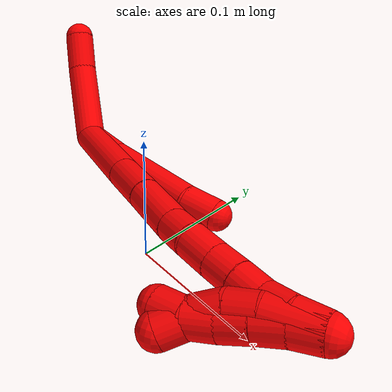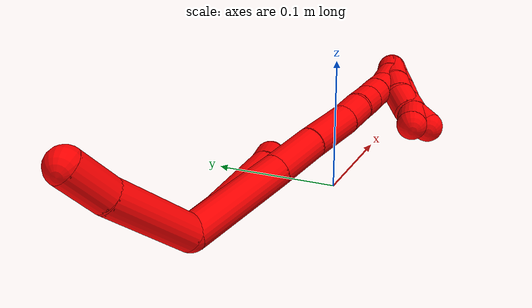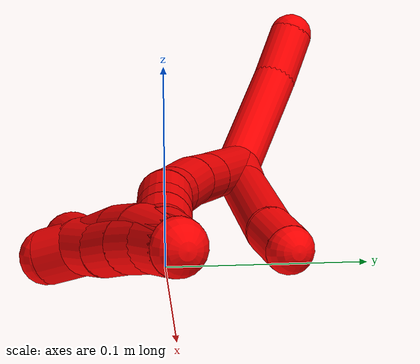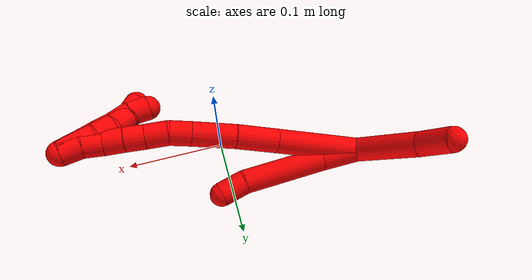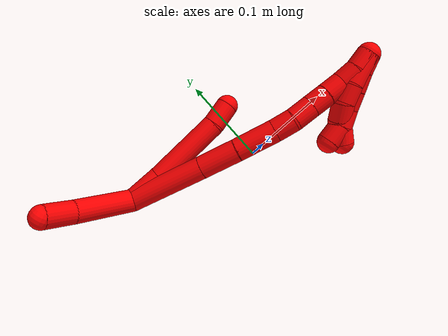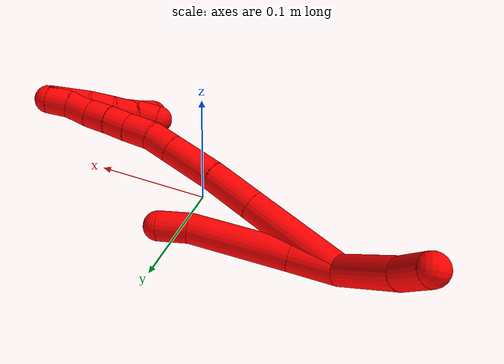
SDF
<sdf version="1.7">
 <world name="default">
  <model name="2">
   <static>0</static>
   <link name="2">
    <collision name="collision-cylinder-e_1_2_8">
     <pose>0.006295 -0.001494 0.018447 0.080801 0.327866 0.013373</pose>
     <geometry><cylinder><radius>0.0125</radius><length>0.039098</length></cylinder></geometry>
     <surface>
      <friction><ode><mu>1.16</mu><mu2>1.16</mu2><slip1>0</slip1><slip2>0</slip2></ode></friction>
      <contact><ode><kp>1e+06</kp><kd>1</kd><max_vel>0</max_vel><min_depth>0.001</min_depth></ode></contact>
     </surface>
    </collision>
    <visual name="visual-cylinder-e_1_2_8">
     <pose>0.006295 -0.001494 0.018447 0.080801 0.327866 0.013373</pose>
     <geometry><cylinder><radius>0.0125</radius><length>0.039098</length></cylinder></geometry>
     <material><ambient>1 0 0 1</ambient></material>
    </visual>
    <collision name="collision-cylinder-e_2_8_9">
     <pose>0.02373 -0.005998 0.077373 0.074239 0.267839 0.010006</pose>
     <geometry><cylinder><radius>0.0125</radius><length>0.084182</length></cylinder></geometry>
     <surface>
      <friction><ode><mu>1.16</mu><mu2>1.16</mu2><slip1>0</slip1><slip2>0</slip2></ode></friction>
      <contact><ode><kp>1e+06</kp><kd>1</kd><max_vel>0</max_vel><min_depth>0.001</min_depth></ode></contact>
     </surface>
    </collision>
    <visual name="visual-cylinder-e_2_8_9">
     <pose>0.02373 -0.005998 0.077373 0.074239 0.267839 0.010006</pose>
     <geometry><cylinder><radius>0.0125</radius><length>0.084182</length></cylinder></geometry>
     <material><ambient>1 0 0 1</ambient></material>
    </visual>
    <collision name="collision-cylinder-e_3_9_6">
     <pose>0.037331 -0.007411 0.130885 -0.122021 0.185355 -0.011355</pose>
     <geometry><cylinder><radius>0.0125</radius><length>0.02672</length></cylinder></geometry>
     <surface>
      <friction><ode><mu>1.16</mu><mu2>1.16</mu2><slip1>0</slip1><slip2>0</slip2></ode></friction>
      <contact><ode><kp>1e+06</kp><kd>1</kd><max_vel>0</max_vel><min_depth>0.001</min_depth></ode></contact>
     </surface>
    </collision>
    <visual name="visual-cylinder-e_3_9_6">
     <pose>0.037331 -0.007411 0.130885 -0.122021 0.185355 -0.011355</pose>
     <geometry><cylinder><radius>0.0125</radius><length>0.02672</length></cylinder></geometry>
     <material><ambient>1 0 0 1</ambient></material>
    </visual>
    <collision name="collision-cylinder-e_1_2_10">
     <pose>-0.029834 -0.00346 -0.015053 2.91566 -1.09309 -2.77286</pose>
     <geometry><cylinder><radius>0.0125</radius><length>0.067191</length></cylinder></geometry>
     <surface>
      <friction><ode><mu>1.16</mu><mu2>1.16</mu2><slip1>0</slip1><slip2>0</slip2></ode></friction>
      <contact><ode><kp>1e+06</kp><kd>1</kd><max_vel>0</max_vel><min_depth>0.001</min_depth></ode></contact>
     </surface>
    </collision>
    <visual name="visual-cylinder-e_1_2_10">
     <pose>-0.029834 -0.00346 -0.015053 2.91566 -1.09309 -2.77286</pose>
     <geometry><cylinder><radius>0.0125</radius><length>0.067191</length></cylinder></geometry>
     <material><ambient>1 0 0 1</ambient></material>
    </visual>
    <collision name="collision-cylinder-e_2_10_5">
     <pose>-0.074717 -0.010307 -0.035692 2.59657 -1.16119 -2.33616</pose>
     <geometry><cylinder><radius>0.0125</radius><length>0.032809</length></cylinder></geometry>
     <surface>
      <friction><ode><mu>1.16</mu><mu2>1.16</mu2><slip1>0</slip1><slip2>0</slip2></ode></friction>
      <contact><ode><kp>1e+06</kp><kd>1</kd><max_vel>0</max_vel><min_depth>0.001</min_depth></ode></contact>
     </surface>
    </collision>
    <visual name="visual-cylinder-e_2_10_5">
     <pose>-0.074717 -0.010307 -0.035692 2.59657 -1.16119 -2.33616</pose>
     <geometry><cylinder><radius>0.0125</radius><length>0.032809</length></cylinder></geometry>
     <material><ambient>1 0 0 1</ambient></material>
    </visual>
    <collision name="collision-cylinder-e_1_2_11">
     <pose>0.01479 -0.01832 0.036267 0.467745 0.349104 0.083974</pose>
     <geometry><cylinder><radius>0.0125</radius><length>0.08648</length></cylinder></geometry>
     <surface>
      <friction><ode><mu>1.16</mu><mu2>1.16</mu2><slip1>0</slip1><slip2>0</slip2></ode></friction>
      <contact><ode><kp>1e+06</kp><kd>1</kd><max_vel>0</max_vel><min_depth>0.001</min_depth></ode></contact>
     </surface>
    </collision>
    <visual name="visual-cylinder-e_1_2_11">
     <pose>0.01479 -0.01832 0.036267 0.467745 0.349104 0.083974</pose>
     <geometry><cylinder><radius>0.0125</radius><length>0.08648</length></cylinder></geometry>
     <material><ambient>1 0 0 1</ambient></material>
    </visual>
    <collision name="collision-cylinder-e_2_11_12">
     <pose>0.036483 -0.045738 0.090484 0.469159 0.330403 0.079643</pose>
     <geometry><cylinder><radius>0.0125</radius><length>0.042549</length></cylinder></geometry>
     <surface>
      <friction><ode><mu>1.16</mu><mu2>1.16</mu2><slip1>0</slip1><slip2>0</slip2></ode></friction>
      <contact><ode><kp>1e+06</kp><kd>1</kd><max_vel>0</max_vel><min_depth>0.001</min_depth></ode></contact>
     </surface>
    </collision>
    <visual name="visual-cylinder-e_2_11_12">
     <pose>0.036483 -0.045738 0.090484 0.469159 0.330403 0.079643</pose>
     <geometry><cylinder><radius>0.0125</radius><length>0.042549</length></cylinder></geometry>
     <material><ambient>1 0 0 1</ambient></material>
    </visual>
    <collision name="collision-cylinder-e_3_12_13">
     <pose>0.051429 -0.063145 0.127559 0.409806 0.368205 0.077358</pose>
     <geometry><cylinder><radius>0.0125</radius><length>0.044699</length></cylinder></geometry>
     <surface>
      <friction><ode><mu>1.16</mu><mu2>1.16</mu2><slip1>0</slip1><slip2>0</slip2></ode></friction>
      <contact><ode><kp>1e+06</kp><kd>1</kd><max_vel>0</max_vel><min_depth>0.001</min_depth></ode></contact>
     </surface>
    </collision>
    <visual name="visual-cylinder-e_3_12_13">
     <pose>0.051429 -0.063145 0.127559 0.409806 0.368205 0.077358</pose>
     <geometry><cylinder><radius>0.0125</radius><length>0.044699</length></cylinder></geometry>
     <material><ambient>1 0 0 1</ambient></material>
    </visual>
    <collision name="collision-cylinder-e_4_13_14">
     <pose>0.062656 -0.075699 0.156523 0.407367 0.28863 0.060015</pose>
     <geometry><cylinder><radius>0.0125</radius><length>0.022358</length></cylinder></geometry>
     <surface>
      <friction><ode><mu>1.16</mu><mu2>1.16</mu2><slip1>0</slip1><slip2>0</slip2></ode></friction>
      <contact><ode><kp>1e+06</kp><kd>1</kd><max_vel>0</max_vel><min_depth>0.001</min_depth></ode></contact>
     </surface>
    </collision>
    <visual name="visual-cylinder-e_4_13_14">
     <pose>0.062656 -0.075699 0.156523 0.407367 0.28863 0.060015</pose>
     <geometry><cylinder><radius>0.0125</radius><length>0.022358</length></cylinder></geometry>
     <material><ambient>1 0 0 1</ambient></material>
    </visual>
    <collision name="collision-cylinder-e_5_14_15">
     <pose>0.06966 -0.081785 0.177027 0.170862 0.339486 0.029354</pose>
     <geometry><cylinder><radius>0.0125</radius><length>0.022955</length></cylinder></geometry>
     <surface>
      <friction><ode><mu>1.16</mu><mu2>1.16</mu2><slip1>0</slip1><slip2>0</slip2></ode></friction>
      <contact><ode><kp>1e+06</kp><kd>1</kd><max_vel>0</max_vel><min_depth>0.001</min_depth></ode></contact>
     </surface>
    </collision>
    <visual name="visual-cylinder-e_5_14_15">
     <pose>0.06966 -0.081785 0.177027 0.170862 0.339486 0.029354</pose>
     <geometry><cylinder><radius>0.0125</radius><length>0.022955</length></cylinder></geometry>
     <material><ambient>1 0 0 1</ambient></material>
    </visual>
    <collision name="collision-cylinder-e_6_15_16">
     <pose>0.076522 -0.085613 0.197086 0.208599 0.306574 0.032343</pose>
     <geometry><cylinder><radius>0.0125</radius><length>0.020144</length></cylinder></geometry>
     <surface>
      <friction><ode><mu>1.16</mu><mu2>1.16</mu2><slip1>0</slip1><slip2>0</slip2></ode></friction>
      <contact><ode><kp>1e+06</kp><kd>1</kd><max_vel>0</max_vel><min_depth>0.001</min_depth></ode></contact>
     </surface>
    </collision>
    <visual name="visual-cylinder-e_6_15_16">
     <pose>0.076522 -0.085613 0.197086 0.208599 0.306574 0.032343</pose>
     <geometry><cylinder><radius>0.0125</radius><length>0.020144</length></cylinder></geometry>
     <material><ambient>1 0 0 1</ambient></material>
    </visual>
    <collision name="collision-cylinder-e_7_16_17">
     <pose>0.082925 -0.089238 0.215893 0.17212 0.338512 0.029485</pose>
     <geometry><cylinder><radius>0.0125</radius><length>0.020258</length></cylinder></geometry>
     <surface>
      <friction><ode><mu>1.16</mu><mu2>1.16</mu2><slip1>0</slip1><slip2>0</slip2></ode></friction>
      <contact><ode><kp>1e+06</kp><kd>1</kd><max_vel>0</max_vel><min_depth>0.001</min_depth></ode></contact>
     </surface>
    </collision>
    <visual name="visual-cylinder-e_7_16_17">
     <pose>0.082925 -0.089238 0.215893 0.17212 0.338512 0.029485</pose>
     <geometry><cylinder><radius>0.0125</radius><length>0.020258</length></cylinder></geometry>
     <material><ambient>1 0 0 1</ambient></material>
    </visual>
    <collision name="collision-cylinder-e_8_17_18">
     <pose>0.087871 -0.093547 0.234922 0.271026 0.157246 0.021484</pose>
     <geometry><cylinder><radius>0.0125</radius><length>0.020211</length></cylinder></geometry>
     <surface>
      <friction><ode><mu>1.16</mu><mu2>1.16</mu2><slip1>0</slip1><slip2>0</slip2></ode></friction>
      <contact><ode><kp>1e+06</kp><kd>1</kd><max_vel>0</max_vel><min_depth>0.001</min_depth></ode></contact>
     </surface>
    </collision>
    <visual name="visual-cylinder-e_8_17_18">
     <pose>0.087871 -0.093547 0.234922 0.271026 0.157246 0.021484</pose>
     <geometry><cylinder><radius>0.0125</radius><length>0.020211</length></cylinder></geometry>
     <material><ambient>1 0 0 1</ambient></material>
    </visual>
    <collision name="collision-cylinder-e_9_18_1">
     <pose>0.090465 -0.096463 0.254659 0.024195 0.099556 0.001205</pose>
     <geometry><cylinder><radius>0.0125</radius><length>0.020347</length></cylinder></geometry>
     <surface>
      <friction><ode><mu>1.16</mu><mu2>1.16</mu2><slip1>0</slip1><slip2>0</slip2></ode></friction>
      <contact><ode><kp>1e+06</kp><kd>1</kd><max_vel>0</max_vel><min_depth>0.001</min_depth></ode></contact>
     </surface>
    </collision>
    <visual name="visual-cylinder-e_9_18_1">
     <pose>0.090465 -0.096463 0.254659 0.024195 0.099556 0.001205</pose>
     <geometry><cylinder><radius>0.0125</radius><length>0.020347</length></cylinder></geometry>
     <material><ambient>1 0 0 1</ambient></material>
    </visual>
    <collision name="collision-cylinder-e_1_1_19">
     <pose>0.091986 -0.09783 0.246874 3.07902 0.028454 0.853409</pose>
     <geometry><cylinder><radius>0.0125</radius><length>0.035896</length></cylinder></geometry>
     <surface>
      <friction><ode><mu>1.16</mu><mu2>1.16</mu2><slip1>0</slip1><slip2>0</slip2></ode></friction>
      <contact><ode><kp>1e+06</kp><kd>1</kd><max_vel>0</max_vel><min_depth>0.001</min_depth></ode></contact>
     </surface>
    </collision>
    <visual name="visual-cylinder-e_1_1_19">
     <pose>0.091986 -0.09783 0.246874 3.07902 0.028454 0.853409</pose>
     <geometry><cylinder><radius>0.0125</radius><length>0.035896</length></cylinder></geometry>
     <material><ambient>1 0 0 1</ambient></material>
    </visual>
    <collision name="collision-cylinder-e_2_19_20">
     <pose>0.094612 -0.099056 0.219189 3.13096 0.213 3.04219</pose>
     <geometry><cylinder><radius>0.0125</radius><length>0.020011</length></cylinder></geometry>
     <surface>
      <friction><ode><mu>1.16</mu><mu2>1.16</mu2><slip1>0</slip1><slip2>0</slip2></ode></friction>
      <contact><ode><kp>1e+06</kp><kd>1</kd><max_vel>0</max_vel><min_depth>0.001</min_depth></ode></contact>
     </surface>
    </collision>
    <visual name="visual-cylinder-e_2_19_20">
     <pose>0.094612 -0.099056 0.219189 3.13096 0.213 3.04219</pose>
     <geometry><cylinder><radius>0.0125</radius><length>0.020011</length></cylinder></geometry>
     <material><ambient>1 0 0 1</ambient></material>
    </visual>
    <collision name="collision-cylinder-e_3_20_21">
     <pose>0.101543 -0.099447 0.200619 3.1089 0.500944 3.01397</pose>
     <geometry><cylinder><radius>0.0125</radius><length>0.020054</length></cylinder></geometry>
     <surface>
      <friction><ode><mu>1.16</mu><mu2>1.16</mu2><slip1>0</slip1><slip2>0</slip2></ode></friction>
      <contact><ode><kp>1e+06</kp><kd>1</kd><max_vel>0</max_vel><min_depth>0.001</min_depth></ode></contact>
     </surface>
    </collision>
    <visual name="visual-cylinder-e_3_20_21">
     <pose>0.101543 -0.099447 0.200619 3.1089 0.500944 3.01397</pose>
     <geometry><cylinder><radius>0.0125</radius><length>0.020054</length></cylinder></geometry>
     <material><ambient>1 0 0 1</ambient></material>
    </visual>
    <collision name="collision-cylinder-e_4_21_4">
     <pose>0.113993 -0.10283 0.183078 2.80163 0.688302 2.24838</pose>
     <geometry><cylinder><radius>0.0125</radius><length>0.024038</length></cylinder></geometry>
     <surface>
      <friction><ode><mu>1.16</mu><mu2>1.16</mu2><slip1>0</slip1><slip2>0</slip2></ode></friction>
      <contact><ode><kp>1e+06</kp><kd>1</kd><max_vel>0</max_vel><min_depth>0.001</min_depth></ode></contact>
     </surface>
    </collision>
    <visual name="visual-cylinder-e_4_21_4">
     <pose>0.113993 -0.10283 0.183078 2.80163 0.688302 2.24838</pose>
     <geometry><cylinder><radius>0.0125</radius><length>0.024038</length></cylinder></geometry>
     <material><ambient>1 0 0 1</ambient></material>
    </visual>
    <collision name="collision-cylinder-e_1_1_22">
     <pose>0.092795 -0.097294 0.254884 3.08245 0.132331 2.30194</pose>
     <geometry><cylinder><radius>0.0125</radius><length>0.02</length></cylinder></geometry>
     <surface>
      <friction><ode><mu>1.16</mu><mu2>1.16</mu2><slip1>0</slip1><slip2>0</slip2></ode></friction>
      <contact><ode><kp>1e+06</kp><kd>1</kd><max_vel>0</max_vel><min_depth>0.001</min_depth></ode></contact>
     </surface>
    </collision>
    <visual name="visual-cylinder-e_1_1_22">
     <pose>0.092795 -0.097294 0.254884 3.08245 0.132331 2.30194</pose>
     <geometry><cylinder><radius>0.0125</radius><length>0.02</length></cylinder></geometry>
     <material><ambient>1 0 0 1</ambient></material>
    </visual>
    <collision name="collision-cylinder-e_2_22_23">
     <pose>0.096688 -0.09841 0.23534 3.08676 0.260272 2.72853</pose>
     <geometry><cylinder><radius>0.0125</radius><length>0.02</length></cylinder></geometry>
     <surface>
      <friction><ode><mu>1.16</mu><mu2>1.16</mu2><slip1>0</slip1><slip2>0</slip2></ode></friction>
      <contact><ode><kp>1e+06</kp><kd>1</kd><max_vel>0</max_vel><min_depth>0.001</min_depth></ode></contact>
     </surface>
    </collision>
    <visual name="visual-cylinder-e_2_22_23">
     <pose>0.096688 -0.09841 0.23534 3.08676 0.260272 2.72853</pose>
     <geometry><cylinder><radius>0.0125</radius><length>0.02</length></cylinder></geometry>
     <material><ambient>1 0 0 1</ambient></material>
    </visual>
    <collision name="collision-cylinder-e_3_23_24">
     <pose>0.102218 -0.099051 0.216139 3.12988 0.300156 3.06416</pose>
     <geometry><cylinder><radius>0.0125</radius><length>0.02</length></cylinder></geometry>
     <surface>
      <friction><ode><mu>1.16</mu><mu2>1.16</mu2><slip1>0</slip1><slip2>0</slip2></ode></friction>
      <contact><ode><kp>1e+06</kp><kd>1</kd><max_vel>0</max_vel><min_depth>0.001</min_depth></ode></contact>
     </surface>
    </collision>
    <visual name="visual-cylinder-e_3_23_24">
     <pose>0.102218 -0.099051 0.216139 3.12988 0.300156 3.06416</pose>
     <geometry><cylinder><radius>0.0125</radius><length>0.02</length></cylinder></geometry>
     <material><ambient>1 0 0 1</ambient></material>
    </visual>
    <collision name="collision-cylinder-e_4_24_25">
     <pose>0.107387 -0.10044 0.196918 3.0103 0.223033 2.07987</pose>
     <geometry><cylinder><radius>0.0125</radius><length>0.02</length></cylinder></geometry>
     <surface>
      <friction><ode><mu>1.16</mu><mu2>1.16</mu2><slip1>0</slip1><slip2>0</slip2></ode></friction>
      <contact><ode><kp>1e+06</kp><kd>1</kd><max_vel>0</max_vel><min_depth>0.001</min_depth></ode></contact>
     </surface>
    </collision>
    <visual name="visual-cylinder-e_4_24_25">
     <pose>0.107387 -0.10044 0.196918 3.0103 0.223033 2.07987</pose>
     <geometry><cylinder><radius>0.0125</radius><length>0.02</length></cylinder></geometry>
     <material><ambient>1 0 0 1</ambient></material>
    </visual>
    <collision name="collision-cylinder-e_5_25_3">
     <pose>0.109033 -0.100994 0.177292 -3.06919 -0.056554 1.32612</pose>
     <geometry><cylinder><radius>0.0125</radius><length>0.02</length></cylinder></geometry>
     <surface>
      <friction><ode><mu>1.16</mu><mu2>1.16</mu2><slip1>0</slip1><slip2>0</slip2></ode></friction>
      <contact><ode><kp>1e+06</kp><kd>1</kd><max_vel>0</max_vel><min_depth>0.001</min_depth></ode></contact>
     </surface>
    </collision>
    <visual name="visual-cylinder-e_5_25_3">
     <pose>0.109033 -0.100994 0.177292 -3.06919 -0.056554 1.32612</pose>
     <geometry><cylinder><radius>0.0125</radius><length>0.02</length></cylinder></geometry>
     <material><ambient>1 0 0 1</ambient></material>
    </visual>
    <collision name="collision-sphere-3">
     <pose>0.108468 -0.100272 0.167334 0 -0 0</pose>
     <geometry><sphere><radius>0.0125</radius></sphere></geometry>
     <surface>
      <friction><ode><mu>1.16</mu><mu2>1.16</mu2><slip1>0</slip1><slip2>0</slip2></ode></friction>
      <contact><ode><kp>1e+06</kp><kd>1</kd><max_vel>0</max_vel><min_depth>0.001</min_depth></ode></contact>
     </surface>
    </collision>
    <visual name="visual-sphere-3">
     <pose>0.108468 -0.100272 0.167334 0 -0 0</pose>
     <geometry><sphere><radius>0.0125</radius></sphere></geometry>
     <material><ambient>1 0 0 1</ambient></material>
    </visual>
    <collision name="collision-sphere-25">
     <pose>0.109599 -0.101717 0.18725 0 -0 0</pose>
     <geometry><sphere><radius>0.0125</radius></sphere></geometry>
     <surface>
      <friction><ode><mu>1.16</mu><mu2>1.16</mu2><slip1>0</slip1><slip2>0</slip2></ode></friction>
      <contact><ode><kp>1e+06</kp><kd>1</kd><max_vel>0</max_vel><min_depth>0.001</min_depth></ode></contact>
     </surface>
    </collision>
    <visual name="visual-sphere-25">
     <pose>0.109599 -0.101717 0.18725 0 -0 0</pose>
     <geometry><sphere><radius>0.0125</radius></sphere></geometry>
     <material><ambient>1 0 0 1</ambient></material>
    </visual>
    <collision name="collision-sphere-24">
     <pose>0.105175 -0.099163 0.206587 0 -0 0</pose>
     <geometry><sphere><radius>0.0125</radius></sphere></geometry>
     <surface>
      <friction><ode><mu>1.16</mu><mu2>1.16</mu2><slip1>0</slip1><slip2>0</slip2></ode></friction>
      <contact><ode><kp>1e+06</kp><kd>1</kd><max_vel>0</max_vel><min_depth>0.001</min_depth></ode></contact>
     </surface>
    </collision>
    <visual name="visual-sphere-24">
     <pose>0.105175 -0.099163 0.206587 0 -0 0</pose>
     <geometry><sphere><radius>0.0125</radius></sphere></geometry>
     <material><ambient>1 0 0 1</ambient></material>
    </visual>
    <collision name="collision-sphere-23">
     <pose>0.099262 -0.098939 0.225691 0 -0 0</pose>
     <geometry><sphere><radius>0.0125</radius></sphere></geometry>
     <surface>
      <friction><ode><mu>1.16</mu><mu2>1.16</mu2><slip1>0</slip1><slip2>0</slip2></ode></friction>
      <contact><ode><kp>1e+06</kp><kd>1</kd><max_vel>0</max_vel><min_depth>0.001</min_depth></ode></contact>
     </surface>
    </collision>
    <visual name="visual-sphere-23">
     <pose>0.099262 -0.098939 0.225691 0 -0 0</pose>
     <geometry><sphere><radius>0.0125</radius></sphere></geometry>
     <material><ambient>1 0 0 1</ambient></material>
    </visual>
    <collision name="collision-sphere-22">
     <pose>0.094115 -0.09788 0.244989 0 -0 0</pose>
     <geometry><sphere><radius>0.0125</radius></sphere></geometry>
     <surface>
      <friction><ode><mu>1.16</mu><mu2>1.16</mu2><slip1>0</slip1><slip2>0</slip2></ode></friction>
      <contact><ode><kp>1e+06</kp><kd>1</kd><max_vel>0</max_vel><min_depth>0.001</min_depth></ode></contact>
     </surface>
    </collision>
    <visual name="visual-sphere-22">
     <pose>0.094115 -0.09788 0.244989 0 -0 0</pose>
     <geometry><sphere><radius>0.0125</radius></sphere></geometry>
     <material><ambient>1 0 0 1</ambient></material>
    </visual>
    <collision name="collision-sphere-4">
     <pose>0.121628 -0.105926 0.174326 0 -0 0</pose>
     <geometry><sphere><radius>0.0125</radius></sphere></geometry>
     <surface>
      <friction><ode><mu>1.16</mu><mu2>1.16</mu2><slip1>0</slip1><slip2>0</slip2></ode></friction>
      <contact><ode><kp>1e+06</kp><kd>1</kd><max_vel>0</max_vel><min_depth>0.001</min_depth></ode></contact>
     </surface>
    </collision>
    <visual name="visual-sphere-4">
     <pose>0.121628 -0.105926 0.174326 0 -0 0</pose>
     <geometry><sphere><radius>0.0125</radius></sphere></geometry>
     <material><ambient>1 0 0 1</ambient></material>
    </visual>
    <collision name="collision-sphere-21">
     <pose>0.106358 -0.099735 0.191829 0 -0 0</pose>
     <geometry><sphere><radius>0.0125</radius></sphere></geometry>
     <surface>
      <friction><ode><mu>1.16</mu><mu2>1.16</mu2><slip1>0</slip1><slip2>0</slip2></ode></friction>
      <contact><ode><kp>1e+06</kp><kd>1</kd><max_vel>0</max_vel><min_depth>0.001</min_depth></ode></contact>
     </surface>
    </collision>
    <visual name="visual-sphere-21">
     <pose>0.106358 -0.099735 0.191829 0 -0 0</pose>
     <geometry><sphere><radius>0.0125</radius></sphere></geometry>
     <material><ambient>1 0 0 1</ambient></material>
    </visual>
    <collision name="collision-sphere-20">
     <pose>0.096727 -0.09916 0.20941 0 -0 0</pose>
     <geometry><sphere><radius>0.0125</radius></sphere></geometry>
     <surface>
      <friction><ode><mu>1.16</mu><mu2>1.16</mu2><slip1>0</slip1><slip2>0</slip2></ode></friction>
      <contact><ode><kp>1e+06</kp><kd>1</kd><max_vel>0</max_vel><min_depth>0.001</min_depth></ode></contact>
     </surface>
    </collision>
    <visual name="visual-sphere-20">
     <pose>0.096727 -0.09916 0.20941 0 -0 0</pose>
     <geometry><sphere><radius>0.0125</radius></sphere></geometry>
     <material><ambient>1 0 0 1</ambient></material>
    </visual>
    <collision name="collision-sphere-5">
     <pose>-0.089764 -0.013694 -0.041278 0 -0 0</pose>
     <geometry><sphere><radius>0.0125</radius></sphere></geometry>
     <surface>
      <friction><ode><mu>1.16</mu><mu2>1.16</mu2><slip1>0</slip1><slip2>0</slip2></ode></friction>
      <contact><ode><kp>1e+06</kp><kd>1</kd><max_vel>0</max_vel><min_depth>0.001</min_depth></ode></contact>
     </surface>
    </collision>
    <visual name="visual-sphere-5">
     <pose>-0.089764 -0.013694 -0.041278 0 -0 0</pose>
     <geometry><sphere><radius>0.0125</radius></sphere></geometry>
     <material><ambient>1 0 0 1</ambient></material>
    </visual>
    <collision name="collision-sphere-10">
     <pose>-0.059669 -0.00692 -0.030105 0 -0 0</pose>
     <geometry><sphere><radius>0.0125</radius></sphere></geometry>
     <surface>
      <friction><ode><mu>1.16</mu><mu2>1.16</mu2><slip1>0</slip1><slip2>0</slip2></ode></friction>
      <contact><ode><kp>1e+06</kp><kd>1</kd><max_vel>0</max_vel><min_depth>0.001</min_depth></ode></contact>
     </surface>
    </collision>
    <visual name="visual-sphere-10">
     <pose>-0.059669 -0.00692 -0.030105 0 -0 0</pose>
     <geometry><sphere><radius>0.0125</radius></sphere></geometry>
     <material><ambient>1 0 0 1</ambient></material>
    </visual>
    <collision name="collision-sphere-6">
     <pose>0.039793 -0.005812 0.143918 0 -0 0</pose>
     <geometry><sphere><radius>0.0125</radius></sphere></geometry>
     <surface>
      <friction><ode><mu>1.16</mu><mu2>1.16</mu2><slip1>0</slip1><slip2>0</slip2></ode></friction>
      <contact><ode><kp>1e+06</kp><kd>1</kd><max_vel>0</max_vel><min_depth>0.001</min_depth></ode></contact>
     </surface>
    </collision>
    <visual name="visual-sphere-6">
     <pose>0.039793 -0.005812 0.143918 0 -0 0</pose>
     <geometry><sphere><radius>0.0125</radius></sphere></geometry>
     <material><ambient>1 0 0 1</ambient></material>
    </visual>
    <collision name="collision-sphere-9">
     <pose>0.034869 -0.009009 0.117851 0 -0 0</pose>
     <geometry><sphere><radius>0.0125</radius></sphere></geometry>
     <surface>
      <friction><ode><mu>1.16</mu><mu2>1.16</mu2><slip1>0</slip1><slip2>0</slip2></ode></friction>
      <contact><ode><kp>1e+06</kp><kd>1</kd><max_vel>0</max_vel><min_depth>0.001</min_depth></ode></contact>
     </surface>
    </collision>
    <visual name="visual-sphere-9">
     <pose>0.034869 -0.009009 0.117851 0 -0 0</pose>
     <geometry><sphere><radius>0.0125</radius></sphere></geometry>
     <material><ambient>1 0 0 1</ambient></material>
    </visual>
    <collision name="collision-sphere-2">
     <geometry><sphere><radius>0.0125</radius></sphere></geometry>
     <surface>
      <friction><ode><mu>1.16</mu><mu2>1.16</mu2><slip1>0</slip1><slip2>0</slip2></ode></friction>
      <contact><ode><kp>1e+06</kp><kd>1</kd><max_vel>0</max_vel><min_depth>0.001</min_depth></ode></contact>
     </surface>
    </collision>
    <visual name="visual-sphere-2">
     <geometry><sphere><radius>0.0125</radius></sphere></geometry>
     <material><ambient>1 0 0 1</ambient></material>
    </visual>
    <collision name="collision-sphere-19">
     <pose>0.092497 -0.098952 0.228968 0 -0 0</pose>
     <geometry><sphere><radius>0.0125</radius></sphere></geometry>
     <surface>
      <friction><ode><mu>1.16</mu><mu2>1.16</mu2><slip1>0</slip1><slip2>0</slip2></ode></friction>
      <contact><ode><kp>1e+06</kp><kd>1</kd><max_vel>0</max_vel><min_depth>0.001</min_depth></ode></contact>
     </surface>
    </collision>
    <visual name="visual-sphere-19">
     <pose>0.092497 -0.098952 0.228968 0 -0 0</pose>
     <geometry><sphere><radius>0.0125</radius></sphere></geometry>
     <material><ambient>1 0 0 1</ambient></material>
    </visual>
    <collision name="collision-sphere-8">
     <pose>0.01259 -0.002988 0.036894 0 -0 0</pose>
     <geometry><sphere><radius>0.0125</radius></sphere></geometry>
     <surface>
      <friction><ode><mu>1.16</mu><mu2>1.16</mu2><slip1>0</slip1><slip2>0</slip2></ode></friction>
      <contact><ode><kp>1e+06</kp><kd>1</kd><max_vel>0</max_vel><min_depth>0.001</min_depth></ode></contact>
     </surface>
    </collision>
    <visual name="visual-sphere-8">
     <pose>0.01259 -0.002988 0.036894 0 -0 0</pose>
     <geometry><sphere><radius>0.0125</radius></sphere></geometry>
     <material><ambient>1 0 0 1</ambient></material>
    </visual>
    <collision name="collision-sphere-11">
     <pose>0.029581 -0.03664 0.072535 0 -0 0</pose>
     <geometry><sphere><radius>0.0125</radius></sphere></geometry>
     <surface>
      <friction><ode><mu>1.16</mu><mu2>1.16</mu2><slip1>0</slip1><slip2>0</slip2></ode></friction>
      <contact><ode><kp>1e+06</kp><kd>1</kd><max_vel>0</max_vel><min_depth>0.001</min_depth></ode></contact>
     </surface>
    </collision>
    <visual name="visual-sphere-11">
     <pose>0.029581 -0.03664 0.072535 0 -0 0</pose>
     <geometry><sphere><radius>0.0125</radius></sphere></geometry>
     <material><ambient>1 0 0 1</ambient></material>
    </visual>
    <collision name="collision-sphere-12">
     <pose>0.043385 -0.054837 0.108434 0 -0 0</pose>
     <geometry><sphere><radius>0.0125</radius></sphere></geometry>
     <surface>
      <friction><ode><mu>1.16</mu><mu2>1.16</mu2><slip1>0</slip1><slip2>0</slip2></ode></friction>
      <contact><ode><kp>1e+06</kp><kd>1</kd><max_vel>0</max_vel><min_depth>0.001</min_depth></ode></contact>
     </surface>
    </collision>
    <visual name="visual-sphere-12">
     <pose>0.043385 -0.054837 0.108434 0 -0 0</pose>
     <geometry><sphere><radius>0.0125</radius></sphere></geometry>
     <material><ambient>1 0 0 1</ambient></material>
    </visual>
    <collision name="collision-sphere-13">
     <pose>0.059474 -0.071453 0.146684 0 -0 0</pose>
     <geometry><sphere><radius>0.0125</radius></sphere></geometry>
     <surface>
      <friction><ode><mu>1.16</mu><mu2>1.16</mu2><slip1>0</slip1><slip2>0</slip2></ode></friction>
      <contact><ode><kp>1e+06</kp><kd>1</kd><max_vel>0</max_vel><min_depth>0.001</min_depth></ode></contact>
     </surface>
    </collision>
    <visual name="visual-sphere-13">
     <pose>0.059474 -0.071453 0.146684 0 -0 0</pose>
     <geometry><sphere><radius>0.0125</radius></sphere></geometry>
     <material><ambient>1 0 0 1</ambient></material>
    </visual>
    <collision name="collision-sphere-14">
     <pose>0.065838 -0.079945 0.166363 0 -0 0</pose>
     <geometry><sphere><radius>0.0125</radius></sphere></geometry>
     <surface>
      <friction><ode><mu>1.16</mu><mu2>1.16</mu2><slip1>0</slip1><slip2>0</slip2></ode></friction>
      <contact><ode><kp>1e+06</kp><kd>1</kd><max_vel>0</max_vel><min_depth>0.001</min_depth></ode></contact>
     </surface>
    </collision>
    <visual name="visual-sphere-14">
     <pose>0.065838 -0.079945 0.166363 0 -0 0</pose>
     <geometry><sphere><radius>0.0125</radius></sphere></geometry>
     <material><ambient>1 0 0 1</ambient></material>
    </visual>
    <collision name="collision-sphere-15">
     <pose>0.073482 -0.083625 0.187692 0 -0 0</pose>
     <geometry><sphere><radius>0.0125</radius></sphere></geometry>
     <surface>
      <friction><ode><mu>1.16</mu><mu2>1.16</mu2><slip1>0</slip1><slip2>0</slip2></ode></friction>
      <contact><ode><kp>1e+06</kp><kd>1</kd><max_vel>0</max_vel><min_depth>0.001</min_depth></ode></contact>
     </surface>
    </collision>
    <visual name="visual-sphere-15">
     <pose>0.073482 -0.083625 0.187692 0 -0 0</pose>
     <geometry><sphere><radius>0.0125</radius></sphere></geometry>
     <material><ambient>1 0 0 1</ambient></material>
    </visual>
    <collision name="collision-sphere-16">
     <pose>0.079561 -0.087602 0.206481 0 -0 0</pose>
     <geometry><sphere><radius>0.0125</radius></sphere></geometry>
     <surface>
      <friction><ode><mu>1.16</mu><mu2>1.16</mu2><slip1>0</slip1><slip2>0</slip2></ode></friction>
      <contact><ode><kp>1e+06</kp><kd>1</kd><max_vel>0</max_vel><min_depth>0.001</min_depth></ode></contact>
     </surface>
    </collision>
    <visual name="visual-sphere-16">
     <pose>0.079561 -0.087602 0.206481 0 -0 0</pose>
     <geometry><sphere><radius>0.0125</radius></sphere></geometry>
     <material><ambient>1 0 0 1</ambient></material>
    </visual>
    <collision name="collision-sphere-17">
     <pose>0.086288 -0.090875 0.225306 0 -0 0</pose>
     <geometry><sphere><radius>0.0125</radius></sphere></geometry>
     <surface>
      <friction><ode><mu>1.16</mu><mu2>1.16</mu2><slip1>0</slip1><slip2>0</slip2></ode></friction>
      <contact><ode><kp>1e+06</kp><kd>1</kd><max_vel>0</max_vel><min_depth>0.001</min_depth></ode></contact>
     </surface>
    </collision>
    <visual name="visual-sphere-17">
     <pose>0.086288 -0.090875 0.225306 0 -0 0</pose>
     <geometry><sphere><radius>0.0125</radius></sphere></geometry>
     <material><ambient>1 0 0 1</ambient></material>
    </visual>
    <collision name="collision-sphere-18">
     <pose>0.089453 -0.096219 0.244539 0 -0 0</pose>
     <geometry><sphere><radius>0.0125</radius></sphere></geometry>
     <surface>
      <friction><ode><mu>1.16</mu><mu2>1.16</mu2><slip1>0</slip1><slip2>0</slip2></ode></friction>
      <contact><ode><kp>1e+06</kp><kd>1</kd><max_vel>0</max_vel><min_depth>0.001</min_depth></ode></contact>
     </surface>
    </collision>
    <visual name="visual-sphere-18">
     <pose>0.089453 -0.096219 0.244539 0 -0 0</pose>
     <geometry><sphere><radius>0.0125</radius></sphere></geometry>
     <material><ambient>1 0 0 1</ambient></material>
    </visual>
    <collision name="collision-sphere-1">
     <pose>0.091476 -0.096708 0.264779 0 -0 0</pose>
     <geometry><sphere><radius>0.0125</radius></sphere></geometry>
     <surface>
      <friction><ode><mu>1.16</mu><mu2>1.16</mu2><slip1>0</slip1><slip2>0</slip2></ode></friction>
      <contact><ode><kp>1e+06</kp><kd>1</kd><max_vel>0</max_vel><min_depth>0.001</min_depth></ode></contact>
     </surface>
    </collision>
    <visual name="visual-sphere-1">
     <pose>0.091476 -0.096708 0.264779 0 -0 0</pose>
     <geometry><sphere><radius>0.0125</radius></sphere></geometry>
     <material><ambient>1 0 0 1</ambient></material>
    </visual>
    <inertial>
     <pose>0.045183 -0.051366 0.120477 0 -0 0</pose>
     <mass>0.75</mass>
     <inertia>
      <ixx>0.000139</ixx>
      <ixy>0</ixy>
      <ixz>0</ixz>
      <iyy>0.000176</iyy>
      <iyz>0</iyz>
      <izz>3.6e-05</izz>
     </inertia>
    </inertial>
   </link>
   <pose>-0.136788 0.048405 0.012974 -1.36673 0.746772 -1.13296</pose>
  </model>
 </world>
</sdf>
